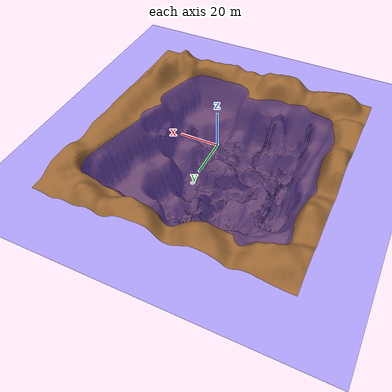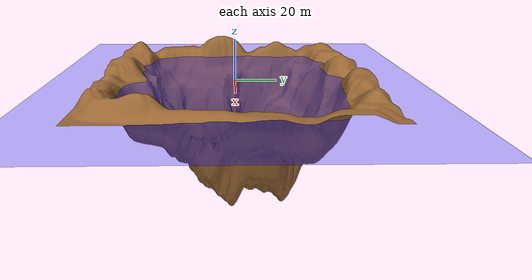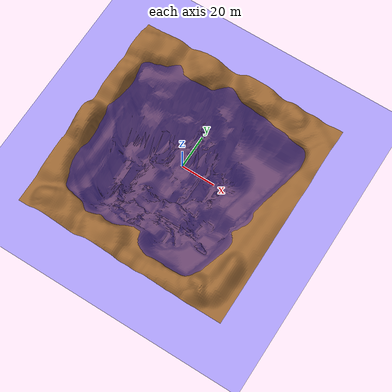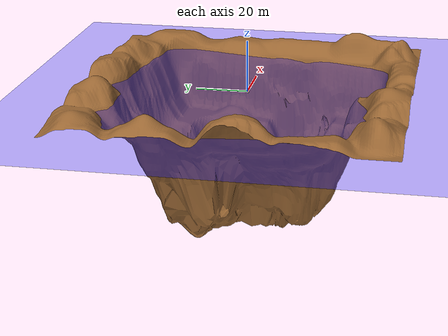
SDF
<?xml version="1.0" ?>
<sdf version="1.6">
  <world name="boat_world">

    <!-- Physics -->
    <physics name="1ms" type="ode">
      <max_step_size>0.001</max_step_size>
      <real_time_factor>1.0</real_time_factor>
    </physics>

    <!-- Core Gazebo systems -->
    <plugin filename="ignition-gazebo-physics-system"
            name="ignition::gazebo::systems::Physics"/>
    <plugin filename="ignition-gazebo-user-commands-system"
            name="ignition::gazebo::systems::UserCommands"/>
    <plugin filename="ignition-gazebo-scene-broadcaster-system"
            name="ignition::gazebo::systems::SceneBroadcaster"/>

    <!-- Buoyancy plugin -->
    <plugin filename="ignition-gazebo-buoyancy-system"
            name="ignition::gazebo::systems::Buoyancy">
      <graded_buoyancy>
        <default_density>1000</default_density>
       <density_change>
          <above_depth>0</above_depth>
          <density>1</density>
          .
        </density_change>
      </graded_buoyancy>

      <!-- ENABLE BOAT -->
      <enable>boat_1::hull_1</enable>

    </plugin>

    <plugin filename="ignition-gazebo-sensors-system"
        name="ignition::gazebo::systems::Sensors">
        <render_engine>ogre2</render_engine>
    </plugin>

    <!-- Sun Light -->
    <light type="directional" name="sun">
      <cast_shadows>true</cast_shadows>
      <pose>0 0 10 0 0 0</pose>
      <diffuse>1 1 1 1</diffuse>
      <specular>0.5 0.5 0.5 1</specular>
      <direction>-0.5 0.1 -0.9</direction>
    </light>

    <!-- Water plane at z=0 -->
    <model name="water_plane">
      <static>true</static>
      <link name="link">
        <visual name="water_plane">
          <geometry>
            <plane>
              <size>200 200</size>
              <normal>0 0 1</normal>
            </plane>
          </geometry>
          <material>
            <ambient>0 0 1 0.5</ambient>
            <diffuse>0 0 1 0.5</diffuse>
          </material>
        </visual>
      </link>
    </model>

    <include>
        <uri>model://envarment</uri>
        <name>my_model</name>
        <pose>0 0 0 0 0 0</pose>
    </include>

      <include>
          <uri>model://boat_1</uri>
          <pose>0 0 0 0 0 0</pose> <!-- position it 2 m on X, same depth as other boat -->
      </include>

  </world>
</sdf>

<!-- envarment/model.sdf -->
<sdf version="1.6">
  <model name="my_fixed_model">
    <static>true</static>
    <!-- default pose (override when including in world) -->
    <pose>0 0 0 0 0 0</pose>

    <link name="link">
      <visual name="visual">
        <geometry>
          <mesh>
            <uri>model://envarment/meshes/la.stl</uri>
            <scale>1 1 1</scale>
          </mesh>
        </geometry>

          <material>
            <ambient>0.6 0.4 0.2 1</ambient>
            <diffuse>0.6 0.4 0.2 1</diffuse>
            <specular>0.1 0.1 0.1 1</specular>
          </material>

      </visual>

      <collision name="collision">
        <geometry>
          <mesh>
            <uri>model://envarment/meshes/la.stl</uri>
            <scale>1 1 1</scale>
          </mesh>
        </geometry>
      </collision>
    </link>
  </model>
</sdf>

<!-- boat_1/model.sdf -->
<sdf version="1.9">
  <model name="boat_1">
    <static>false</static>
    <self_collide>false</self_collide>

    <link name="hull_1">
      <inertial>
        <pose>0.053 0 -0.5 0 0 0</pose>
        <mass>2150</mass>
        <inertia>
          <ixx>5000</ixx> <iyy>5000</iyy> <izz>400</izz>
          <ixy>0</ixy><ixz>0</ixz><iyz>0</iyz>
        </inertia>
      </inertial>

      <velocity_decay>
          <linear>0.1</linear>
          <angular>50.0</angular>
      </velocity_decay>

      <collision name="hull_collision">
        <geometry><box><size>2 1.33 1.7</size></box></geometry>
      </collision>

      <collision name="stabilizer_left">
        <pose>0 1.0 0 0 0 0</pose> <geometry><box><size>1.0 0.1 0.1</size></box></geometry>
      </collision>

      <collision name="stabilizer_right">
        <pose>0 -1.0 0 0 0 0</pose> <geometry><box><size>1.0 0.1 0.1</size></box></geometry>
      </collision>

      <visual name="hull_visual">
        <geometry><mesh><uri>model://boat_1/meshes/boat.stl</uri></mesh></geometry>
      </visual>

      <link_property>
        <center_of_volume>0.8 0 0.4</center_of_volume>
        <volume>3.5</volume>
      </link_property>
    </link>

    <sensor name="imu_sensor" type="imu">
        <always_on>1</always_on>
        <update_rate>100</update_rate>
        <visualize>true</visualize>
        <topic>boat_1/imu</topic> </sensor>

    <link name="propeller_left">
      <pose>-1.1 -0.5 -0.24 0 0 0</pose>
      <gravity>false</gravity>
      <inertial>
        <mass>50.0</mass>
        <inertia><ixx>0.1</ixx><iyy>0.1</iyy><izz>0.1</izz></inertia>
      </inertial>
      <visual name="prop_left_visual">
        <geometry><mesh><uri>model://boat_1/meshes/prop.stl</uri></mesh></geometry>
      </visual>
    </link>

    <link name="propeller_right">
      <pose>-1.1 0.5 -0.24 0 0 0</pose>
      <gravity>false</gravity>
      <inertial>
        <mass>50.0</mass>
        <inertia><ixx>0.1</ixx><iyy>0.1</iyy><izz>0.1</izz></inertia>
      </inertial>
      <visual name="prop_right_visual">
        <geometry><mesh><uri>model://boat_1/meshes/prop.stl</uri></mesh></geometry>
      </visual>
    </link>

    <joint name="prop_joint_left" type="revolute">
      <parent>hull_1</parent>
      <child>propeller_left</child>
      <axis>
        <xyz>1 0 0</xyz>
        <limit><lower>-1e16</lower><upper>1e16</upper></limit>
      </axis>
    </joint>

    <joint name="prop_joint_right" type="revolute">
      <parent>hull_1</parent>
      <child>propeller_right</child>
      <axis>
        <xyz>-1 0 0</xyz>
        <limit><lower>-1e16</lower><upper>1e16</upper></limit>
      </axis>
    </joint>

<plugin filename="libignition-gazebo-thruster-system.so"
            name="ignition::gazebo::systems::Thruster">
      <joint_name>prop_joint_left</joint_name>

      <namespace>boat_1</namespace>

      <topic>left_thrust_cmd</topic>

      <thrust_coefficient>0.02</thrust_coefficient>
      <fluid_density>1000</fluid_density>
      <propeller_diameter>0.2</propeller_diameter>
      <velocity_control>true</velocity_control>
      <p_gain>1.0</p_gain>
      </plugin>

    <plugin filename="libignition-gazebo-thruster-system.so"
            name="ignition::gazebo::systems::Thruster">
      <joint_name>prop_joint_right</joint_name>

      <namespace>boat_1</namespace>

      <topic>right_thrust_cmd</topic>

      <thrust_coefficient>0.02</thrust_coefficient>
      <fluid_density>1000</fluid_density>
      <propeller_diameter>0.2</propeller_diameter>
      <velocity_control>true</velocity_control>
      <p_gain>0.1</p_gain>
    </plugin>

    <plugin filename="libignition-gazebo-hydrodynamics-system.so"
            name="ignition::gazebo::systems::Hydrodynamics">
      <link_name>hull_1</link_name>
          <linear_drag_coefficients>100.0 100.0 100.0</linear_drag_coefficients>
      <angular_drag_coefficients>200.0 200.0 200.0</angular_drag_coefficients>
    </plugin>

  </model>
</sdf>
